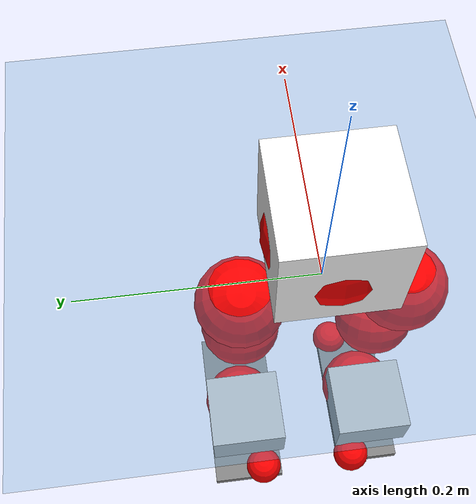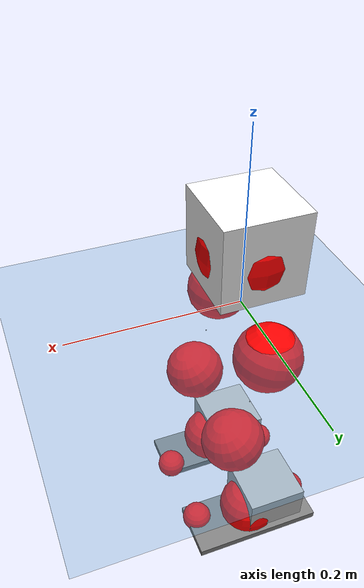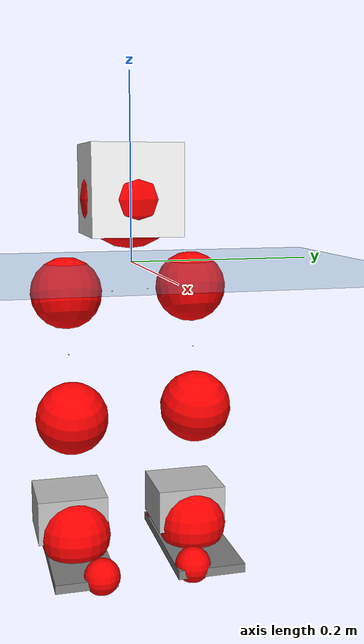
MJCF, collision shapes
<mujoco model="pi_12dof_release_v1">
  <compiler angle="radian" assetdir="assets" balanceinertia="true" inertiafromgeom="false"/>

  <option timestep="0.005" density="1.2" viscosity="2e-05"/>

  <size nkey="1"/>

  <visual>
    <quality shadowsize="8192"/>
    <map shadowclip="0.5"/>
  </visual>

  <default>
    <default class="/">
      <joint armature="0.01" damping="0.01" frictionloss="0.01"/>
      <geom contype="0" conaffinity="0" group="1" solref="-1000 -80"/>
      <site size="0.01 0.005 0.005" group="5"/>
      <general forcelimited="true" biastype="affine" gainprm="20" biasprm="0 -20 -0.5"/>
      <default class="foot">
        <geom size="0.0845 0.036 0.005" type="box" condim="6" group="4" priority="1" friction="0.9 0.2 0.2" solimp="0.015 1 0.005"/>
      </default>
      <default class="reward_collision_sphere">
        <geom group="5" rgba="1 0 0 1"/>
      </default>
    </default>
  </default>

  <asset>
    <texture type="skybox" colorspace="auto" name="//unnamed_texture_0" builtin="gradient" rgb1="0.95 0.95 0.95" rgb2="0.95 0.95 0.95" width="100" height="600"/>
    <texture type="2d" colorspace="auto" name="texplane" builtin="checker" rgb1="0.345 0.575 0.748" rgb2="0.345 0.575 0.748" markrgb="1 1 1" width="512" height="512"/>
    <material name="MatPlane" class="/" texture="texplane" texuniform="true" texrepeat="2 2" specular="0.9"/>
    <mesh name="baselink_1" class="/" file="baselink_1.STL"/>
    <mesh name="r_hip_pitch_link" class="/" file="r_hip_pitch_link.STL"/>
    <mesh name="r_hip_roll_link" class="/" file="r_hip_roll_link.STL"/>
    <mesh name="r_thigh_link" class="/" file="r_thigh_link.STL"/>
    <mesh name="r_calf_link" class="/" file="r_calf_link.STL"/>
    <mesh name="r_ankle_pitch_link" class="/" file="r_ankle_pitch_link.STL"/>
    <mesh name="r_ankle_roll_link" class="/" file="r_ankle_roll_link.STL"/>
    <mesh name="l_hip_pitch_link" class="/" file="l_hip_pitch_link.STL"/>
    <mesh name="l_hip_roll_link" class="/" file="l_hip_roll_link.STL"/>
    <mesh name="l_thigh_link" class="/" file="l_thigh_link.STL"/>
    <mesh name="l_calf_link" class="/" file="l_calf_link.STL"/>
    <mesh name="l_ankle_pitch_link" class="/" file="l_ankle_pitch_link.STL"/>
    <mesh name="l_ankle_roll_link" class="/" file="l_ankle_roll_link.STL"/>
  </asset>

  <worldbody>
    <geom name="floor" class="/" size="100 100 0.125" type="plane" group="0" material="MatPlane"/>
    <light name="toplight_shadow" class="/" pos="0 0 5" dir="0.0990148 0.0990148 -0.990148" type="directional" ambient="0.04 0.04 0.04" diffuse="0.55 0.55 0.55" specular="0.12 0.12 0.12"/>
    <light name="toplight_fill" class="/" pos="0 0 5" dir="0.0990148 0.0990148 -0.990148" type="directional" castshadow="false" ambient="0.04 0.04 0.04" diffuse="0.3 0.3 0.3" specular="0.08 0.08 0.08"/>
    <body name="trunk" pos="-0.00258095 -0.00120185 0.000839476" quat="1 -0.000190484 0.000939185 5.40457e-06">
      <inertial pos="-0.000218808 0.000635505 0.0384147" quat="0.695317 0.00556977 0.00795107 0.718638" mass="1.87765" diaginertia="0.0127141 0.00448473 0.00340799"/>
      <joint name="//unnamed_joint_0" type="free"/>
      <geom name="//unnamed_geom_1" class="/" type="mesh" density="0" rgba="1 1 1 1" mesh="baselink_1"/>
      <geom name="//unnamed_geom_2" class="/" size="0.0479043 0.0479043 0.0479043" pos="0 0 0.0764103" type="box" rgba="1 1 1 1"/>
      <geom name="//unnamed_geom_3" class="reward_collision_sphere" size="0.0526948" pos="0 0 0.066859"/>
      <site name="imu" class="/" pos="0.000990046 -0.00472895 0.00518509" size="0.00958087"/>
      <camera name="track" class="/" pos="0 -1.73674 0" quat="0.707107 0.707107 0 0" mode="trackcom"/>
      <camera name="ego_camera" class="/" pos="0.0788071 0 0.171923" quat="-0.5 -0.5 0.5 0.5"/>
      <body name="r_hip_pitch_link" pos="-0.000716205 -0.0195618 -0.0318899" quat="0.992193 -0.00119543 -0.124707 0.000258278">
        <inertial pos="-0.00155446 -0.049438 0.000591476" quat="-0.020122 0.704428 -0.0272722 0.708966" mass="0.334459" diaginertia="0.00014348 4.82297e-05 6.79727e-05"/>
        <joint name="r_hip_pitch_joint" class="/" pos="0 0 0" axis="-3.03265e-05 -1 8.69678e-05" range="-1.75206 1.22846" armature="0.00950683" damping="0.014977" frictionloss="0.0102007"/>
        <geom name="//unnamed_geom_4" class="/" type="mesh" density="0" rgba="0.75294 0.75294 0.75294 1" mesh="r_hip_pitch_link"/>
        <geom name="//unnamed_geom_5" class="/" size="0.000479043 0.000479043 0.000479043" type="box" rgba="0.75294 0.75294 0.75294 1"/>
        <body name="r_hip_roll_link" pos="-0.00103646 -0.049385 -0.000523148" quat="1 -5.48515e-05 -3.15378e-05 6.50143e-05">
          <inertial pos="0.00115361 0.000430304 -0.056504" quat="0.707284 -0.0777037 -0.0809055 0.697972" mass="0.344571" diaginertia="0.000424151 0.000135076 0.000102822"/>
          <joint name="r_hip_roll_joint" class="/" pos="0 0 0" axis="-1 -2.19538e-05 0.000589254" stiffness="0.00204801" range="-0.15996 0.491813" armature="0.00834428" damping="0" frictionloss="0.00973029"/>
          <geom name="//unnamed_geom_6" class="/" type="mesh" density="0" rgba="0.75294 0.75294 0.75294 1" mesh="r_hip_roll_link"/>
          <geom name="//unnamed_geom_7" class="/" size="0.000479043 0.000479043 0.000479043" type="box" rgba="0.75294 0.75294 0.75294 1"/>
          <geom name="//unnamed_geom_8" class="reward_collision_sphere" size="0.0383235"/>
          <body name="r_thigh_link" pos="-0.00104995 -0.000381782 -0.0654854" quat="1 -0.000249996 0.000335941 -4.09653e-05">
            <inertial pos="0.000837311 0.000512487 -0.0468138" quat="0.733485 0.679632 0.00998363 0.000845354" mass="0.0979186" diaginertia="0.000162308 4.66958e-05 4.55448e-05"/>
            <joint name="r_thigh_joint" class="/" pos="0 0 0" axis="0.00215556 -0.00586831 -0.99998" range="-0.303119 0.609358" armature="0.00852237" damping="0" frictionloss="0.00931723"/>
            <geom name="//unnamed_geom_9" class="/" type="mesh" density="0" rgba="0.75294 0.75294 0.75294 1" mesh="r_thigh_link"/>
            <geom name="//unnamed_geom_10" class="/" size="0.000479043 0.000479043 0.000479043" type="box" rgba="0.75294 0.75294 0.75294 1"/>
            <body name="r_calf_link" pos="-0.0010861 0.000397441 -0.0672795" quat="0.947697 0.000157697 0.319171 1.11235e-06">
              <inertial pos="0.00130593 -0.00186414 -0.0666748" quat="0.999974 -0.00283507 -0.00150545 0.00649039" mass="0.749603" diaginertia="0.00458836 0.00177043 0.000139486"/>
              <joint name="r_calf_joint" class="/" pos="0 0 0" axis="0.000517295 -0.999997 0.00225577" stiffness="0.0092403" range="-1.66096 0.603353" armature="0.0109789" damping="0" frictionloss="0.0108457"/>
              <geom name="//unnamed_geom_11" class="/" type="mesh" density="0" rgba="0.75294 0.75294 0.75294 1" mesh="r_calf_link"/>
              <geom name="//unnamed_geom_12" class="/" size="0.000479043 0.000479043 0.000479043" type="box" rgba="0.75294 0.75294 0.75294 1"/>
              <geom name="//unnamed_geom_13" class="reward_collision_sphere" size="0.0383235"/>
              <body name="r_ankle_pitch_link" pos="-0.000559233 0.00131768 -0.131534" quat="0.979874 0.000156356 -0.199615 0.000901533">
                <inertial pos="0.00364727 0.000567921 0.000779438" quat="0.00238308 0.707115 -0.00238822 0.70709" mass="0.151383" diaginertia="0.000397083 0.000111658 9.41081e-05"/>
                <joint name="r_ankle_pitch_joint" class="/" pos="0 0 0" axis="0.0128769 -0.999899 0.00597288" range="-1.33511 0.535567" armature="0.00975476" damping="0.00750509" frictionloss="0.00907083"/>
                <geom name="//unnamed_geom_14" class="/" type="mesh" density="0" rgba="0.75294 0.75294 0.75294 1" mesh="r_ankle_pitch_link"/>
                <geom name="//unnamed_geom_15" class="/" size="0.0373654 0.0383235 0.0239522" type="box" rgba="0.75294 0.75294 0.75294 1"/>
                <body name="r_ankle_roll_link" pos="0.0815985 0.00354367 -0.000206979" quat="1 -7.19929e-07 -1.62515e-06 8.91302e-08">
                  <inertial pos="-0.0248835 0.000323366 -0.0129608" quat="0.559965 0.430367 0.434261 0.559144" mass="0.461561" diaginertia="0.00152567 0.000513079 0.000232139"/>
                  <joint name="r_ankle_roll_joint" class="/" pos="0 0 0" axis="-0.99991 0.0128833 0.00372018" stiffness="0.00128894" range="-0.160842 0.110436" armature="0.00921293" damping="0.000835788" frictionloss="0.00951246"/>
                  <geom name="//unnamed_geom_16" class="/" type="mesh" density="0" rgba="0.75294 0.75294 0.75294 1" mesh="r_ankle_roll_link"/>
                  <geom name="//unnamed_geom_17" class="/" type="mesh" rgba="0.75294 0.75294 0.75294 1" mesh="r_ankle_roll_link"/>
                  <geom name="right_foot" class="foot" size="0.0794002 0.032653 0.00475182" pos="-0.0535888 0 -0.0420257"/>
                  <geom name="//unnamed_geom_19" class="reward_collision_sphere" size="0.0383235" pos="-0.052538 0 -0.0191026"/>
                  <geom name="//unnamed_geom_20" class="reward_collision_sphere" size="0.0191617" pos="0.0157614 0.0173674 -0.0382052"/>
                  <geom name="//unnamed_geom_21" class="reward_collision_sphere" size="0.0191617" pos="-0.126091 0.0173674 -0.0382052"/>
                  <site name="right_foot" class="foot" pos="-0.0535888 0 -0.0420257" size="0.00958087"/>
                </body>
              </body>
            </body>
          </body>
        </body>
      </body>
      <body name="l_hip_pitch_link" pos="0.0015886 0.0190919 -0.0303257" quat="0.99223 -0.0012179 -0.124413 0.000244657">
        <inertial pos="0.0034463 0.0478578 0.00037113" quat="-0.0386063 0.705634 0.0295795 0.706905" mass="0.341223" diaginertia="0.000165538 5.31624e-05 8.15707e-05"/>
        <joint name="l_hip_pitch_joint" class="/" pos="0 0 0" axis="0.00336833 0.999989 0.00325467" range="-1.23899 1.75982" armature="0.0103698" damping="0" frictionloss="0.00925123"/>
        <geom name="//unnamed_geom_22" class="/" type="mesh" density="0" rgba="0.75294 0.75294 0.75294 1" mesh="l_hip_pitch_link"/>
        <geom name="//unnamed_geom_23" class="/" size="0.000479043 0.000479043 0.000479043" type="box" rgba="0.75294 0.75294 0.75294 1"/>
        <body name="l_hip_roll_link" pos="-0.00218757 0.0485115 0.00165032" quat="0.999999 0.00105912 -0.000431516 -0.000481859">
          <inertial pos="-0.00166457 -0.000219445 -0.0576256" quat="0.697409 -0.0691022 -0.0693181 0.709958" mass="0.333234" diaginertia="0.0004217 0.000134223 0.000100956"/>
          <joint name="l_hip_roll_joint" class="/" pos="0 0 0" axis="-0.999988 -0.00175183 0.00446545" stiffness="0.0088596" range="-0.479655 0.132223" armature="0.0103164" damping="0" frictionloss="0.00946891"/>
          <geom name="//unnamed_geom_24" class="/" type="mesh" density="0" rgba="0.75294 0.75294 0.75294 1" mesh="l_hip_roll_link"/>
          <geom name="//unnamed_geom_25" class="/" size="0.000479043 0.000479043 0.000479043" type="box" rgba="0.75294 0.75294 0.75294 1"/>
          <geom name="//unnamed_geom_26" class="reward_collision_sphere" size="0.0383235"/>
          <body name="l_thigh_link" pos="1.2164e-05 -0.00120124 -0.0661555" quat="1 6.35141e-06 0.000331477 2.23391e-05">
            <inertial pos="0.000454928 -0.00136593 -0.0452569" quat="0.675179 0.737653 0.00106484 0.000251135" mass="0.098835" diaginertia="0.000159765 4.67539e-05 4.55364e-05"/>
            <joint name="l_thigh_joint" class="/" pos="0 0 0" axis="-0.00390516 -0.000933167 -0.999992" range="-0.599364 0.303723" armature="0.00950249" damping="0.000599292" frictionloss="0.00960063"/>
            <geom name="//unnamed_geom_27" class="/" type="mesh" density="0" rgba="0.75294 0.75294 0.75294 1" mesh="l_thigh_link"/>
            <geom name="//unnamed_geom_28" class="/" size="0.000479043 0.000479043 0.000479043" type="box" rgba="0.75294 0.75294 0.75294 1"/>
            <body name="l_calf_link" pos="0.000967192 -0.00205135 -0.0654469" quat="0.947771 -0.000191188 0.318951 -0.000664803">
              <inertial pos="0.000307101 0.00414973 -0.0672519" quat="0.99997 -0.00398345 0.00600508 -0.00283278" mass="0.715354" diaginertia="0.00453201 0.00174433 0.000140209"/>
              <joint name="l_calf_joint" class="/" pos="0 0 0" axis="0.000594468 0.999998 -0.00168757" stiffness="0.00338524" range="-0.639398 1.65087" armature="0.00832029" damping="0.00473932" frictionloss="0.010827"/>
              <geom name="//unnamed_geom_29" class="/" type="mesh" density="0" rgba="0.75294 0.75294 0.75294 1" mesh="l_calf_link"/>
              <geom name="//unnamed_geom_30" class="/" size="0.000479043 0.000479043 0.000479043" type="box" rgba="0.75294 0.75294 0.75294 1"/>
              <geom name="//unnamed_geom_31" class="reward_collision_sphere" size="0.0383235"/>
              <body name="l_ankle_pitch_link" pos="0.000867776 0.00152794 -0.135814" quat="0.980052 -0.000112128 -0.198739 0.000184034">
                <inertial pos="0.00502516 -0.000687008 7.96763e-05" quat="-0.00159169 0.707389 0.00149164 0.706821" mass="0.157126" diaginertia="0.000402173 0.000111186 9.34276e-05"/>
                <joint name="l_ankle_pitch_joint" class="/" pos="0 0 0" axis="0.00065935 0.999998 -0.00165903" range="-0.488955 1.30222" armature="0.00962957" damping="0.00277666" frictionloss="0.00926389"/>
                <geom name="//unnamed_geom_32" class="/" type="mesh" density="0" rgba="0.75294 0.75294 0.75294 1" mesh="l_ankle_pitch_link"/>
                <geom name="//unnamed_geom_33" class="/" size="0.0373654 0.0383235 0.0239522" type="box" rgba="0.75294 0.75294 0.75294 1"/>
                <body name="l_ankle_roll_link" pos="0.0768312 0.00272271 0.00016629" quat="1 -0.000171055 -0.000388579 9.29735e-05">
                  <inertial pos="-0.0229613 -0.000935447 -0.0138106" quat="0.561886 0.427048 0.43425 0.559769" mass="0.45582" diaginertia="0.00140455 0.000484097 0.00022044"/>
                  <joint name="l_ankle_roll_joint" class="/" pos="0 0 0" axis="-0.999945 0.00866313 0.0058459" range="-0.131861 0.154094" armature="0.00983914" damping="0.00864214" frictionloss="0.00911264"/>
                  <geom name="//unnamed_geom_34" class="/" type="mesh" density="0" rgba="0.75294 0.75294 0.75294 1" mesh="l_ankle_roll_link"/>
                  <geom name="//unnamed_geom_35" class="/" type="mesh" rgba="0.75294 0.75294 0.75294 1" mesh="l_ankle_roll_link"/>
                  <geom name="left_foot" class="foot" size="0.0838411 0.0366066 0.00475612" pos="-0.0535888 0 -0.0420257"/>
                  <geom name="//unnamed_geom_37" class="reward_collision_sphere" size="0.0383235" pos="-0.052538 0 -0.0191026"/>
                  <geom name="//unnamed_geom_38" class="reward_collision_sphere" size="0.0191617" pos="0.0157614 -0.0173674 -0.0382052"/>
                  <geom name="//unnamed_geom_39" class="reward_collision_sphere" size="0.0191617" pos="-0.126091 -0.0173674 -0.0382052"/>
                  <site name="left_foot" class="foot" pos="-0.0535888 0 -0.0420257" size="0.00958087"/>
                </body>
              </body>
            </body>
          </body>
        </body>
      </body>
    </body>
  </worldbody>

  <contact>
    <pair class="/" geom1="floor" geom2="right_foot" name="//unnamed_contact_1"/>
    <pair class="/" geom1="floor" geom2="left_foot" name="//unnamed_contact_0"/>
  </contact>

  <actuator>
    <general name="r_hip_pitch_joint" class="/" joint="r_hip_pitch_joint" forcerange="-20.7329 20.7329" gainprm="19.1548" biasprm="0 -19.1548 -0.482252"/>
    <general name="r_hip_roll_joint" class="/" joint="r_hip_roll_joint" forcerange="-20.0104 20.0104" gainprm="19.1548" biasprm="0 -19.1548 -0.482252"/>
    <general name="r_thigh_joint" class="/" joint="r_thigh_joint" forcerange="-20.1464 20.1464" gainprm="19.1548" biasprm="0 -19.1548 -0.482252"/>
    <general name="r_calf_joint" class="/" joint="r_calf_joint" forcerange="-20.4822 20.4822" gainprm="19.1548" biasprm="0 -19.1548 -0.482252"/>
    <general name="r_ankle_pitch_joint" class="/" joint="r_ankle_pitch_joint" forcerange="-19.5916 19.5916" gainprm="19.1548" biasprm="0 -19.1548 -0.482252"/>
    <general name="r_ankle_roll_joint" class="/" joint="r_ankle_roll_joint" forcerange="-20.5719 20.5719" gainprm="19.1548" biasprm="0 -19.1548 -0.482252"/>
    <general name="l_hip_pitch_joint" class="/" joint="l_hip_pitch_joint" forcerange="-19.8272 19.8272" gainprm="19.1548" biasprm="0 -19.1548 -0.482252"/>
    <general name="l_hip_roll_joint" class="/" joint="l_hip_roll_joint" forcerange="-20.209 20.209" gainprm="19.1548" biasprm="0 -19.1548 -0.482252"/>
    <general name="l_thigh_joint" class="/" joint="l_thigh_joint" forcerange="-20.1953 20.1953" gainprm="19.1548" biasprm="0 -19.1548 -0.482252"/>
    <general name="l_calf_joint" class="/" joint="l_calf_joint" forcerange="-22.1016 22.1016" gainprm="19.1548" biasprm="0 -19.1548 -0.482252"/>
    <general name="l_ankle_pitch_joint" class="/" joint="l_ankle_pitch_joint" forcerange="-20.113 20.113" gainprm="19.1548" biasprm="0 -19.1548 -0.482252"/>
    <general name="l_ankle_roll_joint" class="/" joint="l_ankle_roll_joint" forcerange="-18.9602 18.9602" gainprm="19.1548" biasprm="0 -19.1548 -0.482252"/>
  </actuator>

  <sensor>
    <gyro site="imu" name="imu_angular_velocity"/>
    <velocimeter site="imu" name="imu_linear_velocity"/>
    <framelinvel objtype="site" objname="left_foot" name="left_foot_global_linear_velocity"/>
    <framelinvel objtype="site" objname="right_foot" name="right_foot_global_linear_velocity"/>
  </sensor>

  <keyframe>
    <key name="home" qpos="0 0 0.291 1 0 0 0 0.4 0 0 -0.8 0.4 0 -0.4 0 0 0.8 -0.4 0"/>
  </keyframe>
</mujoco>
